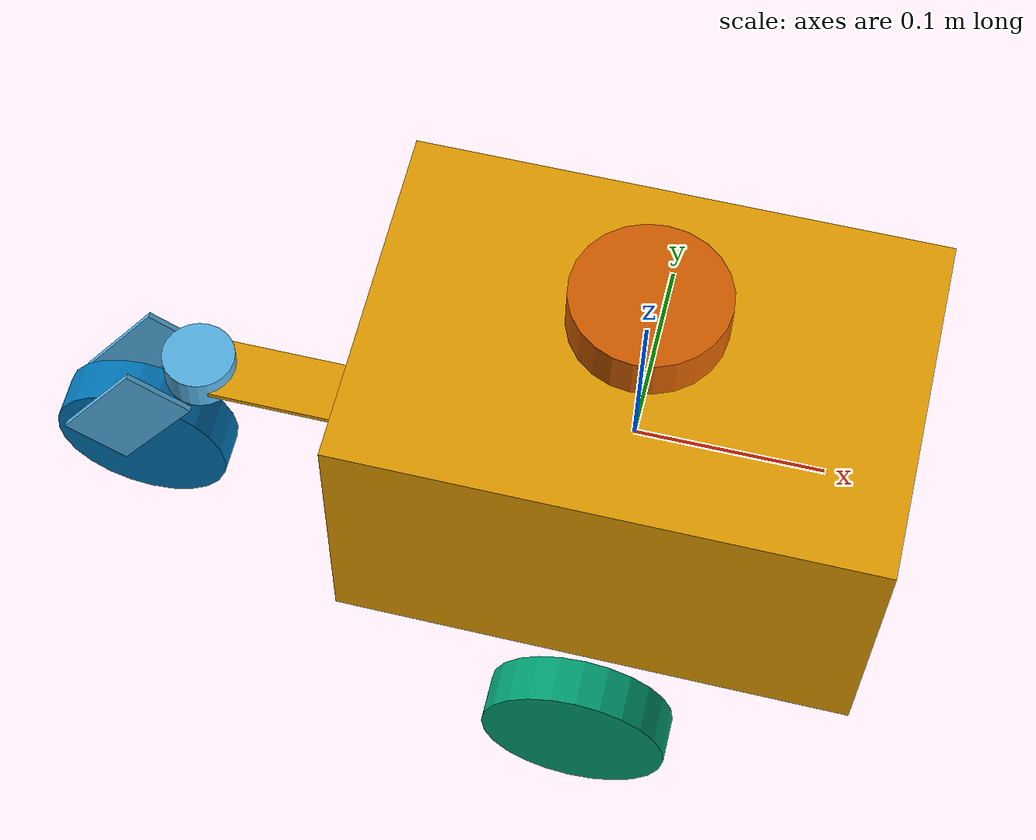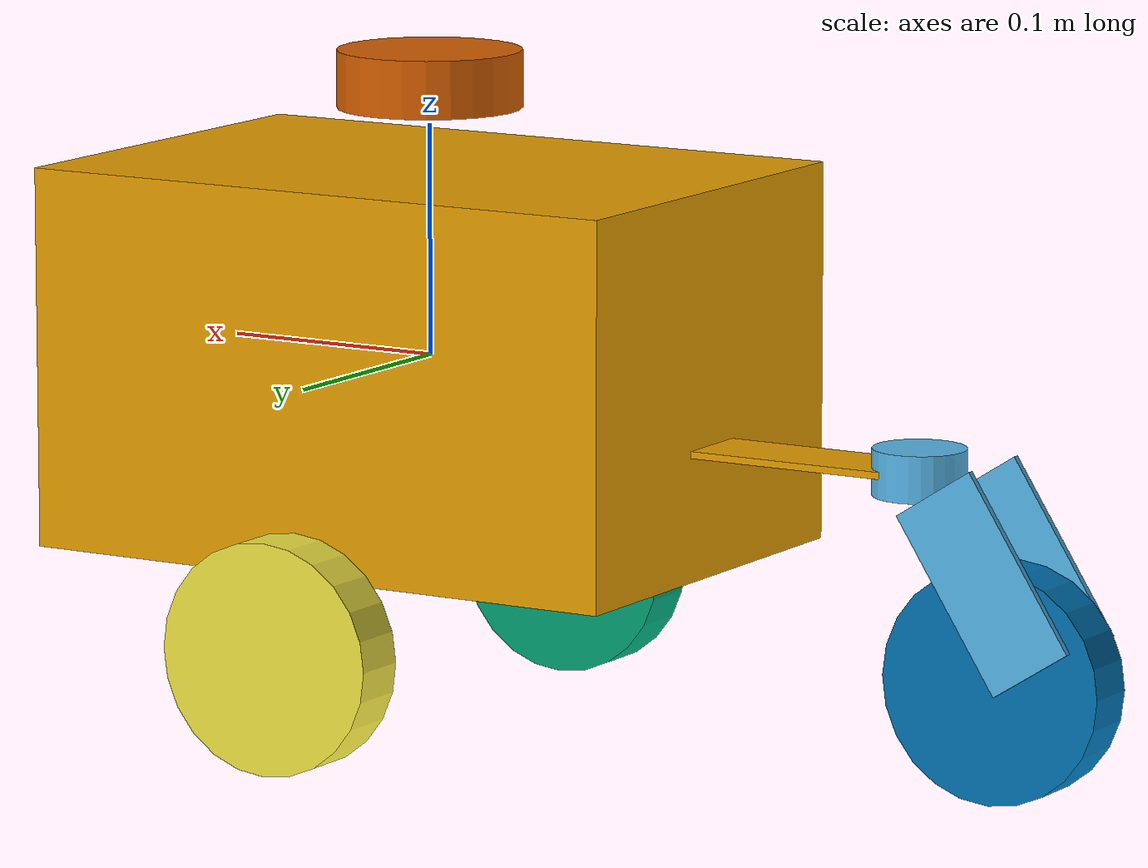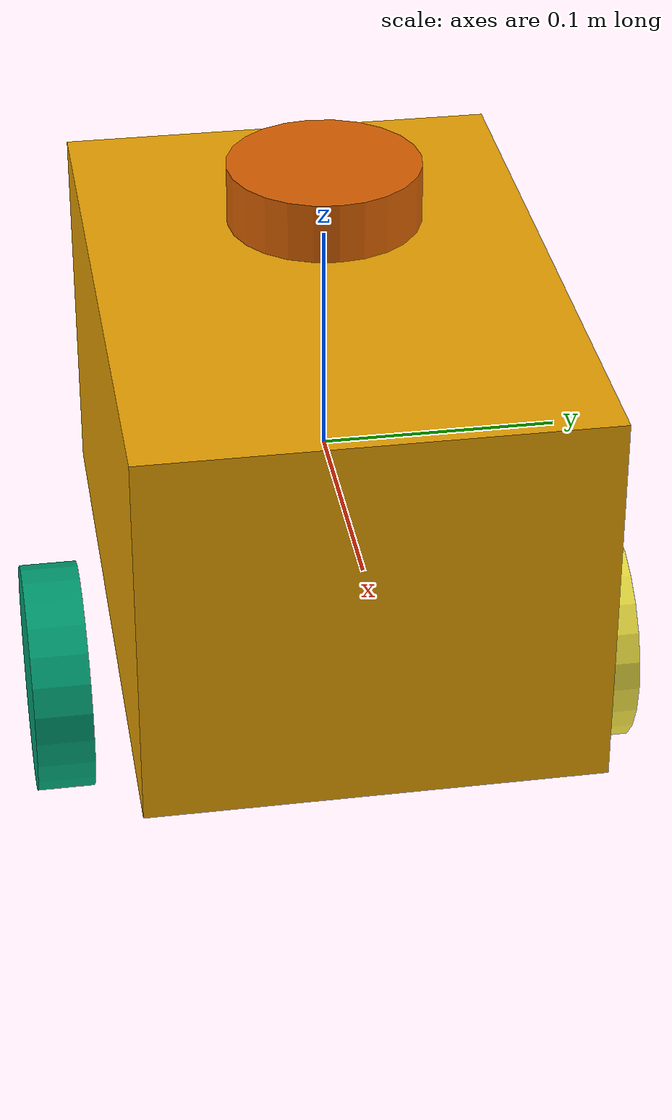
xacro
<?xml version="1.0" encoding="UTF-8"?>
<robot name="gunnar"
    xmlns:xacro="http://ros.org/wiki/xacro">

    <!-- ============== MACROS ============== -->
    <xacro:macro name="inertialEye" params="ma mo">
        <inertial>
            <mass value="${ma}" />
            <inertia ixx="${mo}" iyy="${mo}" izz="${mo}" ixy="0" ixz="0" iyz="0" />
        </inertial>
    </xacro:macro>
    <xacro:macro name="macbox" params="size name *origin *material">
        <collision name="${name}_collision">
            <xacro:insert_block name="origin" />
            <geometry>
                <box size="${size}" />
            </geometry>
        </collision>
        <visual name="${name}_visual">
            <xacro:insert_block name="origin" />
            <geometry>
                <box size="${size}" />
            </geometry>
            <xacro:insert_block name="material" />
        </visual>
    </xacro:macro>
    <xacro:macro name="maccyl" params="radius length name *origin *material">
        <collision name="${name}_collision">
            <xacro:insert_block name="origin" />
            <geometry>
                <cylinder radius="${radius}" length="${length}" />
            </geometry>
        </collision>
        <visual name="${name}_visual">
            <xacro:insert_block name="origin" />
            <geometry>
                <cylinder radius="${radius}" length="${length}" />
            </geometry>
            <xacro:insert_block name="material"/>
        </visual>
    </xacro:macro>

    <!-- ============== DIMENSIONS ============== -->
    <xacro:property name="CHASSISLENGTH" value=".28" />
    <xacro:property name="CHASSISHEIGHT" value=".165" />
    <xacro:property name="CHASSISWIDTH" value=".19" />
    <xacro:property name="BRACKETLENGTH" value=".1" />
    <xacro:property name="CLEARANCE" value=".06" />
    <xacro:property name="CASTERBRACKETHEIGHT" value="-${CHASSISHEIGHT/2-.055}" />
    <xacro:property name="CASTERARMLENGTH" value=".085" />
    <xacro:property name="SHEETMETALTHICKNESS" value=".003" />
    <xacro:property name="WHEELRADIUS" value=".05" />
    <xacro:property name="WHEELLENGTH" value=".025" />
    <xacro:property name="SIDEWHEELMASS" value=".165" />
    <xacro:property name="CASTERMASS" value=".695" />
    <xacro:property name="LIDARMASS" value=".1" />
    <xacro:property name="CHASSISMASS" value="${4.922 - 2*SIDEWHEELMASS - CASTERMASS - LIDARMASS}" />
    <xacro:property name="WHEELJOINTFRICTION" value="0.005" />
    <xacro:property name="WHEELJOINTDAMPING" value="0.005" />
    <xacro:property name="WHEELSURFACEFRICTION" value=".9" />
    <xacro:property name="WHEELTORQUE" value=".2" />
    <xacro:property name="WHEELACCEL" value=".2" />
    <xacro:property name="CASTERJOINTDAMPING" value=".0025" />
    <xacro:property name="CASTERJOINTFRICTION" value=".0025" />
    <xacro:property name="M_PI" value="3.1415926535897931" />
    <!-- ============= BODY ======= -->
    <link name="chassis">
        <origin xyz="0 0 ${CLEARANCE}"/>
        <xacro:inertialEye ma="${CHASSISMASS}" mo=".005" />
        <xacro:macbox size="${CHASSISLENGTH} ${CHASSISWIDTH} ${CHASSISHEIGHT}" name="chassis">
            <origin xyz="0 0 0"/>
            <material name="plastic"/>
        </xacro:macbox>
        <xacro:macbox size="${BRACKETLENGTH} .035 ${SHEETMETALTHICKNESS}" name="caster_bracket">
            <origin xyz="-${(BRACKETLENGTH+CHASSISLENGTH)/2} 0 ${CASTERBRACKETHEIGHT}" />
            <material name="steel">
                <ambient>.5 .5 .5 1"</ambient>
                <diffuse>0 0 0 1</diffuse>
                <specular>0.1 0.1 0.1 1</specular>
                <emissive>0 0 0 0</emissive>
            </material>
        </xacro:macbox>
    </link>

    <!-- ============== CASTER ARM ============== -->
    <link name="caster_arm">
        <origin />
        <xacro:inertialEye ma=".1" mo=".005" />
        <xacro:maccyl radius=".02" length=".02" name="caster_yawjoint">
            <origin xyz="0 0 0" />
            <material  name="steel"/>
        </xacro:maccyl>
        <xacro:property name="CASTERARMX" value="-.04053" />
        <xacro:property name="CASTERARMYabs" value=".02" />
        <xacro:property name="CASTERARMZ" value="-.04" />
        <xacro:macbox size="${CASTERARMLENGTH} ${SHEETMETALTHICKNESS} .04" name="caster_arm_l">
            <origin xyz="${CASTERARMX} -${CASTERARMYabs} ${CASTERARMZ}" rpy="0 -1 0" />
            <material name="steel">
                <ambient>.5 .5 .5 1</ambient>
                <diffuse>0 0 0 1</diffuse>
                <specular>0.1 0.1 0.1 1</specular>
                <emissive>0 0 0 0</emissive>
            </material>
        </xacro:macbox>
        <xacro:macbox size="${CASTERARMLENGTH} ${SHEETMETALTHICKNESS} .04" name="caster_arm_l">
            <origin xyz="${CASTERARMX} ${CASTERARMYabs} ${CASTERARMZ}" rpy="0 -1 0" />
            <material name="steel">
                <ambient>.5 .5 .5 1</ambient>
                <diffuse>0 0 0 1</diffuse>
                <specular>0.1 0.1 0.1 1</specular>
                <emissive>0 0 0 0</emissive>
            </material>
        </xacro:macbox>
    </link>

    <!-- ============== WHEELS ============== -->
    <link name="left_wheel">
        <origin />
        <xacro:inertialEye ma="${SIDEWHEELMASS}" mo="${SIDEWHEELMASS*.04*.04}" />
        <xacro:maccyl radius="${WHEELRADIUS}" length="${WHEELLENGTH}" name="left_wheel">
            <origin />
            <material name="rubber">
                <ambient>0 0 0 1</ambient>
            </material>
        </xacro:maccyl>
    </link>
    <gazebo reference="left_wheel">
        <mu1>${WHEELSURFACEFRICTION}</mu1>
        <mu2>${WHEELSURFACEFRICTION}</mu2>
    </gazebo>
    <link name="right_wheel">
        <origin />
        <xacro:inertialEye ma="${SIDEWHEELMASS}" mo="${SIDEWHEELMASS*.04*.04}" />
        <xacro:maccyl radius="${WHEELRADIUS}" length="${WHEELLENGTH}" name="right_wheel">
            <origin />
            <material name="rubber">
                <ambient>0 0 0 1</ambient>
            </material>
        </xacro:maccyl>
    </link>
     <gazebo reference="right_wheel">
        <mu1>${WHEELSURFACEFRICTION}</mu1>
        <mu2>${WHEELSURFACEFRICTION}</mu2>
    </gazebo>
    <link name="caster_wheel">
        <origin />
        <xacro:inertialEye ma="${CASTERMASS}" mo="${.695*.04*.04}" />
        <xacro:maccyl radius="${WHEELRADIUS}" length="${WHEELLENGTH}" name="caster_wheel">
            <origin />
            <material name="rubber">
                <ambient>0 0 0 1</ambient>
            </material>
        </xacro:maccyl>
    </link>
    <gazebo reference="caster_wheel">
        <mu1>${WHEELSURFACEFRICTION}</mu1>
        <mu2>${WHEELSURFACEFRICTION}</mu2>
    </gazebo>
    <link name="lidar_disk">
        <origin />
        <xacro:inertialEye ma="${LIDARMASS}" mo="${LIDARMASS*.04*.04}" />
        <xacro:maccyl radius=".04" length=".025" name="lidar_disk">
            <origin />
            <material name="rubber">
                <ambient>0 0 0 1</ambient>
            </material>
        </xacro:maccyl>
    </link>

    <!-- ============== JOINTS ============== -->
    <xacro:macro name="continuousJoint" params="name posexyz poserpy parent child xyz friction damping">
        <joint type="continuous" name="${name}_continuous_joint">
            <origin xyz="${posexyz}" rpy="${poserpy}"/>
            <parent link="${parent}" />
            <child link="${child}" />
            <axis xyz="${xyz}" />
            <dynamics damping="${damping}" friction="${friction}"/>
        </joint>
    </xacro:macro>
    <xacro:macro name="revoluteJoint" params="name posexyz poserpy parent child xyz friction damping lower upper effort velocity">
        <joint type="continuous" name="${name}_revolute_joint">
            <origin xyz="${posexyz}" rpy="${poserpy}"/>
            <parent link="${parent}" />
            <child link="${child}" />
            <limit lower="${lower}" upper="${upper}" effort="${effort}" velocity="${velocity}"/>
            <axis xyz="${xyz}" />
            <dynamics damping="${damping}" friction="${friction}"/>
        </joint>
    </xacro:macro>
    <xacro:continuousJoint name="left_wheel"
            posexyz="0 -.12 -.11" poserpy="-${M_PI / 2} 0 0"
            parent="chassis" child="left_wheel" xyz="0 0 1"
            friction="${WHEELJOINTFRICTION}" damping="${WHEELJOINTDAMPING}" />
    <xacro:continuousJoint name="right_wheel"
            posexyz="0 .12 -.11" poserpy="-${M_PI / 2} 0 0"
            parent="chassis" child="right_wheel" xyz="0 0 1"
            friction="${WHEELJOINTFRICTION}" damping="${WHEELJOINTDAMPING}" />
    <xacro:continuousJoint name="caster_wheel"
            posexyz="-.04 0 -.085" poserpy="${M_PI / 2} 0 0"
            parent="caster_arm" child="caster_wheel" xyz="0 0 1"
            friction="${WHEELJOINTFRICTION}" damping="${WHEELJOINTDAMPING}" />
    <xacro:continuousJoint name="lidar_disk"
            posexyz="0 0 .12" poserpy="0 0 0"
            parent="chassis" child="lidar_disk" xyz="0 0 1"
            friction=".0001" damping=".0001" />
    <xacro:revoluteJoint name="caster_yaw"
            posexyz="-.23947 0 ${CASTERBRACKETHEIGHT}"  poserpy="0 0 0"
            parent="chassis" child="caster_arm" xyz="0 0 1"
            friction="${CASTERJOINTFRICTION}" damping="${CASTERJOINTDAMPING}"
            lower="-${M_PI}" upper="${M_PI}"
            effort="1000" velocity="1000" />

    <!-- ============== PLUGINS ============== -->
    <gazebo>
        <plugin name="p3d" filename="libgazebo_ros_p3d.so">
            <alwaysOn>true</alwaysOn>
            <bodyName>chassis</bodyName>
            <topicName>ground_truth_p3d</topicName>
            <serviceName>p3d_service</serviceName>
            <gaussianNoise>0.0</gaussianNoise>
            <updateRate>20.0</updateRate>
        </plugin>
        <plugin name="differential_drive_controller" filename="libgazebo_ros_diff_drive.so">
            <alwaysOn>true</alwaysOn>
            <updateRate>20</updateRate>
            <rosDebugLevel>info</rosDebugLevel>
            <publishWheelTF>true</publishWheelTF>
            <publishTf>true</publishTf>
            <publishWheelJointState>true</publishWheelJointState>
            <legacyMode>true</legacyMode>
            <commandTopic>cmd_vel</commandTopic>
            <leftJoint>left_wheel_continuous_joint</leftJoint>
            <rightJoint>right_wheel_continuous_joint</rightJoint>
            <wheelSeparation>${CHASSISWIDTH+WHEELLENGTH}</wheelSeparation>
            <wheelDiameter>${2*WHEELRADIUS}</wheelDiameter>
            <wheelTorque>${WHEELTORQUE}</wheelTorque>
            <wheelAcceleration>${WHEELACCEL}</wheelAcceleration>
            <odometryTopic>odom</odometryTopic>
            <odometryFrame>odom</odometryFrame>
            <odometrySource>world</odometrySource>
            <robotBaseFrame>base_footprint</robotBaseFrame>
        </plugin>
        <static>false</static>
    </gazebo>
</robot>
